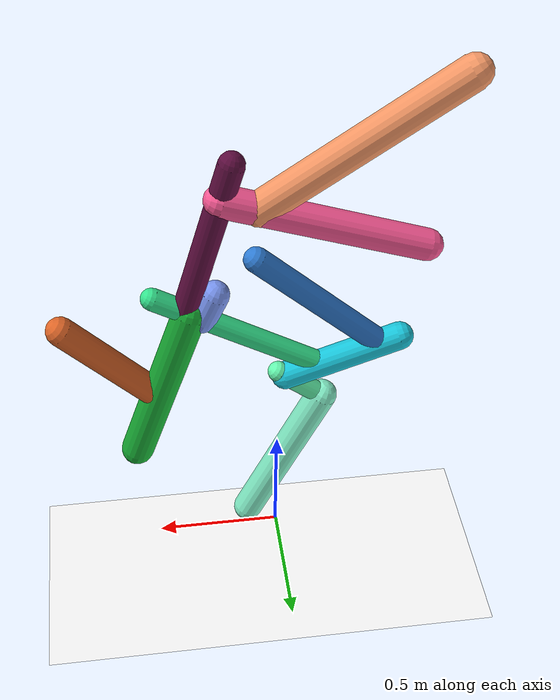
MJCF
<mujoco model="morphology">
  <option timestep="0.01"/>
  <default>
    <default class="/"/>
    <default class="0/"/>
    <default class="0/1/"/>
    <default class="0/2/"/>
    <default class="0/2/3/"/>
    <default class="0/2/4/"/>
    <default class="0/2/4/5/"/>
    <default class="0/2/4/6/"/>
    <default class="0/2/4/6/7/"/>
    <default class="0/2/4/8/"/>
    <default class="0/2/4/8/9/"/>
    <default class="0/2/4/8/9/10/"/>
  </default>
  <asset>
    <texture name="texplane" type="2d" builtin="checker" rgb1="0.10000000000000001 0.20000000000000001 0.29999999999999999" rgb2="0.20000000000000001 0.29999999999999999 0.40000000000000002" width="300" height="300"/>
    <material name="MatPlane" class="/" texture="texplane" texrepeat="20 20" specular="1" shininess="1" reflectance="0.5"/>
  </asset>
  <worldbody>
    <light name="//unnamed_light_0" class="/" directional="true" pos="0 0 1.5" dir="0 0 -1.3" cutoff="100" exponent="1" diffuse="1 1 1" specular="0.10000000000000001 0.10000000000000001 0.10000000000000001"/>
    <geom name="ground" class="/" type="plane" size="15 15 0.5" material="MatPlane" rgba="1 1 1 1"/>
    <site name="body" class="/" size="9.9999999999999995e-07 9.9999999999999995e-07 9.9999999999999995e-07" pos="0 0 0.88396767377853391"/>
    <body pos="0 0 0.88396767377853391" name="0/">
      <joint name="0/rootx/" class="/" type="slide" axis="1 0 0" limited="false" stiffness="0" armature="0" damping="0"/>
      <joint name="0/rootz/" class="/" type="slide" axis="0 0 1" limited="false" stiffness="0" armature="0" damping="0"/>
      <joint name="0/rooty/" class="/" type="hinge" axis="0 1 0" limited="false" stiffness="0" armature="0" damping="0"/>
      <geom name="0/geom" class="0/" type="capsule" contype="1" conaffinity="1" condim="3" size="0.040971911015568907" rgba="0.39842219112336463 0.99174323544667187 0.69660972552556355 1" friction="0.59999999999999998 0.10000000000000001 0.10000000000000001" fromto="0 0 0 -0.18414145340634924 0 -0.14991665438380175"/>
      <site name="0/end0" class="0/" size="0.0050000000000000001" pos="-0.18414145340634924 0 -0.14991665438380175"/>
      <site name="0/attach1" class="0/" size="9.9999999999999995e-07 9.9999999999999995e-07 9.9999999999999995e-07" pos="-0.1764043600079678 0 -0.14361758844572248"/>
      <body pos="-0.1764043600079678 0 -0.14361758844572248" name="0/1/">
        <geom name="0/1/geom" class="0/1/" type="capsule" contype="1" conaffinity="1" condim="3" size="0.059929021747467753" rgba="0.52347471925120237 0.94995076124428368 0.79574441123189288 1" friction="0.59999999999999998 0.10000000000000001 0.10000000000000001" fromto="0 0 0 0.29793705845461371 0 -0.64035011056072344"/>
        <site name="0/1/end1" class="0/1/" size="0.0050000000000000001" pos="0.29793705845461371 0 -0.64035011056072344"/>
      </body>
      <site name="0/attach2" class="0/" size="9.9999999999999995e-07 9.9999999999999995e-07 9.9999999999999995e-07" pos="-0.029065626692021531 0 -0.023663446935116617"/>
      <body pos="-0.029065626692021531 0 -0.023663446935116617" name="0/2/">
        <joint name="0/2/joint/" class="0/" type="hinge" axis="0 1 0" limited="true" range="-48.810588141363048 48.810588141363048"/>
        <geom name="0/2/geom" class="0/2/" type="capsule" contype="1" conaffinity="1" condim="3" size="0.054814612842111816" rgba="0.094512659216696937 0.77961579089790689 0.86221591538105302 1" friction="0.59999999999999998 0.10000000000000001 0.10000000000000001" fromto="0 0 0 -0.43787479775451638 0 0.15675274004443041"/>
        <site name="0/2/end2" class="0/2/" size="0.0050000000000000001" pos="-0.43787479775451638 0 0.15675274004443041"/>
        <site name="0/2/attach3" class="0/2/" size="9.9999999999999995e-07 9.9999999999999995e-07 9.9999999999999995e-07" pos="-0.36647521303779551 0 0.13119273841890869"/>
        <body pos="-0.36647521303779551 0 0.13119273841890869" name="0/2/3/">
          <joint name="0/2/3/joint/" class="0/2/" type="hinge" axis="0 1 0" limited="true" range="-47.238213801910689 47.238213801910689"/>
          <geom name="0/2/3/geom" class="0/2/3/" type="capsule" contype="1" conaffinity="1" condim="3" size="0.047961472873870113" rgba="0.18623685308355131 0.49398583166706811 0.84219117308073277 1" friction="0.59999999999999998 0.10000000000000001 0.10000000000000001" fromto="0 0 0 0.48093130101368931 0 0.44618406567446089"/>
          <site name="0/2/3/end3" class="0/2/3/" size="0.0050000000000000001" pos="0.48093130101368931 0 0.44618406567446089"/>
        </body>
        <site name="0/2/attach4" class="0/2/" size="9.9999999999999995e-07 9.9999999999999995e-07 9.9999999999999995e-07" pos="-0.13952294840719165 0 0.049947164290022009"/>
        <body pos="-0.13952294840719165 0 0.049947164290022009" name="0/2/4/">
          <joint name="0/2/4/joint/" class="0/2/" type="hinge" axis="0 1 0" limited="true" range="-49.93963628080332 49.93963628080332"/>
          <geom name="0/2/4/geom" class="0/2/4/" type="capsule" contype="1" conaffinity="1" condim="3" size="0.042018183075536737" rgba="0.20599034557725993 0.90384537865058101 0.56527062855805821 1" friction="0.59999999999999998 0.10000000000000001 0.10000000000000001" fromto="0 0 0 0.63410128564744728 0 0.38538561229998991"/>
          <site name="0/2/4/end4" class="0/2/4/" size="0.0050000000000000001" pos="0.63410128564744728 0 0.38538561229998991"/>
          <site name="0/2/4/attach5" class="0/2/4/" size="9.9999999999999995e-07 9.9999999999999995e-07 9.9999999999999995e-07" pos="0.45245646529111649 0 0.27498794886887173"/>
          <body pos="0.45245646529111649 0 0.27498794886887173" name="0/2/4/5/">
            <joint name="0/2/4/5/joint/" class="0/2/4/" type="hinge" axis="0 1 0" limited="true" range="-66.121042145977896 66.121042145977896"/>
            <geom name="0/2/4/5/geom" class="0/2/4/5/" type="capsule" contype="1" conaffinity="1" condim="3" size="0.054356453002768285" rgba="0.47589156039651481 0.5880934426074097 0.94676241071358347 1" friction="0.59999999999999998 0.10000000000000001 0.10000000000000001" fromto="0 0 0 -0.04801481727499457 0 0.10778250361391317"/>
            <site name="0/2/4/5/end5" class="0/2/4/5/" size="0.0050000000000000001" pos="-0.04801481727499457 0 0.10778250361391317"/>
          </body>
          <site name="0/2/4/attach6" class="0/2/4/" size="9.9999999999999995e-07 9.9999999999999995e-07 9.9999999999999995e-07" pos="0.4985631055217184 0 0.30301002701088819"/>
          <body pos="0.4985631055217184 0 0.30301002701088819" name="0/2/4/6/">
            <joint name="0/2/4/6/joint/" class="0/2/4/" type="hinge" axis="0 1 0" limited="true" range="-43.959859524515579 43.959859524515579"/>
            <geom name="0/2/4/6/geom" class="0/2/4/6/" type="capsule" contype="1" conaffinity="1" condim="3" size="0.064681984391829872" rgba="0.093080858288963286 0.68219020261986218 0.2085166007329553 1" friction="0.59999999999999998 0.10000000000000001 0.10000000000000001" fromto="0 0 0 0.23750653736282923 0 -0.68852593768367121"/>
            <site name="0/2/4/6/end6" class="0/2/4/6/" size="0.0050000000000000001" pos="0.23750653736282923 0 -0.68852593768367121"/>
            <site name="0/2/4/6/attach7" class="0/2/4/6/" size="9.9999999999999995e-07 9.9999999999999995e-07 9.9999999999999995e-07" pos="0.13734978167204284 0 -0.39817382825097447"/>
            <body pos="0.13734978167204284 0 -0.39817382825097447" name="0/2/4/6/7/">
              <joint name="0/2/4/6/7/joint/" class="0/2/4/6/" type="hinge" axis="0 1 0" limited="true" range="-65.63778029012623 65.63778029012623"/>
              <geom name="0/2/4/6/7/geom" class="0/2/4/6/7/" type="capsule" contype="1" conaffinity="1" condim="3" size="0.055243215935831785" rgba="0.88377570512665504 0.4066092471998578 0.16032659496129065 1" friction="0.59999999999999998 0.10000000000000001 0.10000000000000001" fromto="0 0 0 0.3374735403530229 0 0.36370510564495651"/>
              <site name="0/2/4/6/7/end7" class="0/2/4/6/7/" size="0.0050000000000000001" pos="0.3374735403530229 0 0.36370510564495651"/>
            </body>
          </body>
          <site name="0/2/4/attach8" class="0/2/4/" size="9.9999999999999995e-07 9.9999999999999995e-07 9.9999999999999995e-07" pos="0.51796300243544591 0 0.31480063731223734"/>
          <body pos="0.51796300243544591 0 0.31480063731223734" name="0/2/4/8/">
            <joint name="0/2/4/8/joint/" class="0/2/4/" type="hinge" axis="0 1 0" limited="true" range="-66.877053121621117 66.877053121621117"/>
            <geom name="0/2/4/8/geom" class="0/2/4/8/" type="capsule" contype="1" conaffinity="1" condim="3" size="0.048057322003341361" rgba="0.36432534593181098 0.050514974178164973 0.24564412448535078 1" friction="0.59999999999999998 0.10000000000000001 0.10000000000000001" fromto="0 0 0 -0.18077379663625726 0 0.61469358139962038"/>
            <site name="0/2/4/8/end8" class="0/2/4/8/" size="0.0050000000000000001" pos="-0.18077379663625726 0 0.61469358139962038"/>
            <site name="0/2/4/8/attach9" class="0/2/4/8/" size="9.9999999999999995e-07 9.9999999999999995e-07 9.9999999999999995e-07" pos="-0.13968205717617074 0 0.4749674210563431"/>
            <body pos="-0.13968205717617074 0 0.4749674210563431" name="0/2/4/8/9/">
              <joint name="0/2/4/8/9/joint/" class="0/2/4/8/" type="hinge" axis="0 1 0" limited="true" range="-63.772784380574222 63.772784380574222"/>
              <geom name="0/2/4/8/9/geom" class="0/2/4/8/9/" type="capsule" contype="1" conaffinity="1" condim="3" size="0.059110274473229654" rgba="0.98948360912395783 0.34906457824987036 0.58973920874606811 1" friction="0.59999999999999998 0.10000000000000001 0.10000000000000001" fromto="0 0 0 -0.74125880145670675 0 -0.25327357181498333"/>
              <site name="0/2/4/8/9/end9" class="0/2/4/8/9/" size="0.0050000000000000001" pos="-0.74125880145670675 0 -0.25327357181498333"/>
              <site name="0/2/4/8/9/attach10" class="0/2/4/8/9/" size="9.9999999999999995e-07 9.9999999999999995e-07 9.9999999999999995e-07" pos="-0.13319203605170532 0 -0.045509102410429422"/>
              <body pos="-0.13319203605170532 0 -0.045509102410429422" name="0/2/4/8/9/10/">
                <geom name="0/2/4/8/9/10/geom" class="0/2/4/8/9/10/" type="capsule" contype="1" conaffinity="1" condim="3" size="0.062817032365911254" rgba="0.95412814438379223 0.59115247728946929 0.39261692817285687 1" friction="0.59999999999999998 0.10000000000000001 0.10000000000000001" fromto="0 0 0 -0.69445327907059462 0 0.47162090555193048"/>
                <site name="0/2/4/8/9/10/end10" class="0/2/4/8/9/10/" size="0.0050000000000000001" pos="-0.69445327907059462 0 0.47162090555193048"/>
              </body>
            </body>
          </body>
        </body>
      </body>
      <camera name="0/side" class="0/" mode="trackcom" pos="0.40000000000000002 -4 0.20000000000000001" quat="0.70699999999999996 0.70699999999999996 0 0"/>
    </body>
  </worldbody>
  <actuator>
    <motor name="0/2/motor" class="0/2/" ctrllimited="true" ctrlrange="-1 1" gear="50" joint="0/2/joint/"/>
    <motor name="0/2/3/motor" class="0/2/3/" ctrllimited="true" ctrlrange="-1 1" gear="63" joint="0/2/3/joint/"/>
    <motor name="0/2/4/motor" class="0/2/4/" ctrllimited="true" ctrlrange="-1 1" gear="74" joint="0/2/4/joint/"/>
    <motor name="0/2/4/5/motor" class="0/2/4/5/" ctrllimited="true" ctrlrange="-1 1" gear="52" joint="0/2/4/5/joint/"/>
    <motor name="0/2/4/6/motor" class="0/2/4/6/" ctrllimited="true" ctrlrange="-1 1" gear="88" joint="0/2/4/6/joint/"/>
    <motor name="0/2/4/6/7/motor" class="0/2/4/6/7/" ctrllimited="true" ctrlrange="-1 1" gear="52" joint="0/2/4/6/7/joint/"/>
    <motor name="0/2/4/8/motor" class="0/2/4/8/" ctrllimited="true" ctrlrange="-1 1" gear="52" joint="0/2/4/8/joint/"/>
    <motor name="0/2/4/8/9/motor" class="0/2/4/8/9/" ctrllimited="true" ctrlrange="-1 1" gear="59" joint="0/2/4/8/9/joint/"/>
  </actuator>
  <sensor>
    <subtreelinvel name="velocity" body="0/"/>
  </sensor>
</mujoco>
